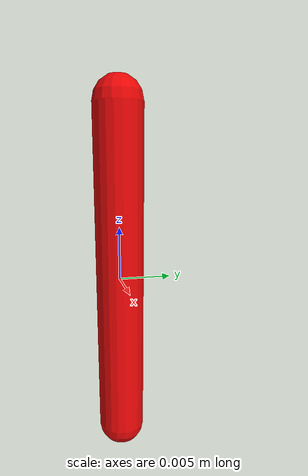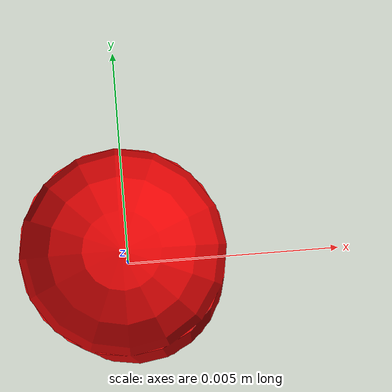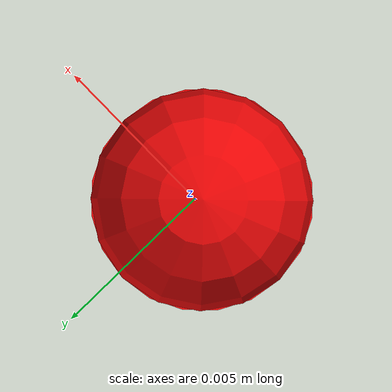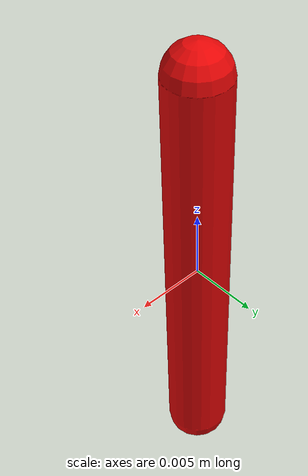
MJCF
<mujoco model="lego_technic_axle_4l">
  <compiler angle="radian" autolimits="true"/>

  <statistic center="0 0 0" extent="0.08"/>

  <visual>
    <headlight diffuse="0.8 0.8 0.8" ambient="0.4 0.4 0.4" specular="0.1 0.1 0.1"/>
    <rgba haze="0.15 0.2 0.25 1"/>
    <global azimuth="135" elevation="-25"/>
  </visual>

  <default>
    <default class="lego_technic">
      <site group="5" size="0.0015" rgba="1 0 0 1"/>
      <default class="visual">
        <geom contype="0" conaffinity="0" group="0" rgba="0.9 0.02 0.02 1"/>
      </default>
      <default class="collision">
        <geom contype="1" conaffinity="1" group="3" rgba="0.8 0.05 0.04 1"
          condim="3" friction="0.6 0.005 0.0001" solref="0.004 1"
          solimp="0.95 0.99 0.001"/>
      </default>
    </default>
  </default>

  <worldbody>
    <light pos="0 -0.05 0.12" dir="0 0 -1" directional="false"/>
    <body name="axle_4l" childclass="lego_technic">
      <freejoint name="axle_4l_freejoint"/>
      <geom name="axle_4l_visual" class="visual" type="capsule"
        fromto="0 0 -0.016 0 0 0.016" size="0.0023"/>
      <geom name="axle_4l_collision" class="collision" type="capsule"
        fromto="0 0 -0.016 0 0 0.016" size="0.0023" mass="0.001"/>
      <site name="rod_tip" pos="0 0 -0.016"/>
      <site name="rod_back" pos="0 0 0.016"/>
    </body>
  </worldbody>
</mujoco>
